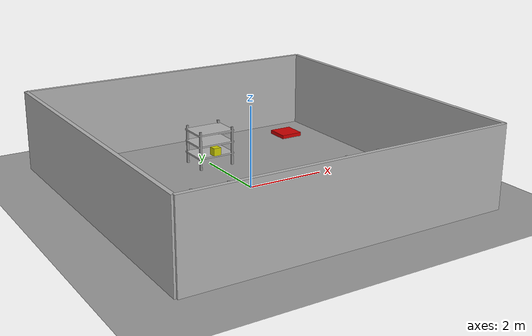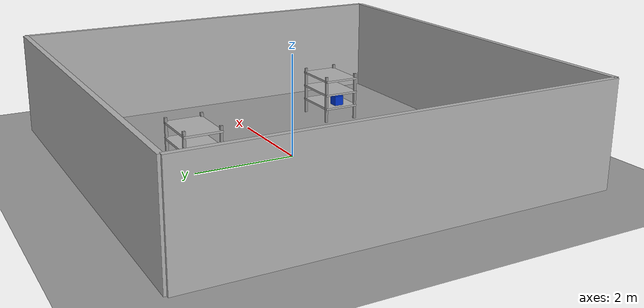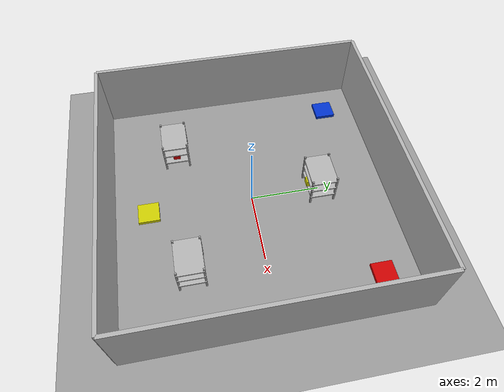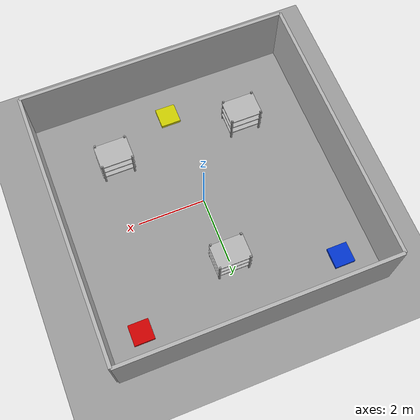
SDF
<?xml version="1.0"?>
<sdf version="1.6">
    <world name="warehouse">
        <plugin filename="gz-sim-physics-system" name="gz::sim::systems::Physics"/>
        <plugin filename="gz-sim-user-commands-system" name="gz::sim::systems::UserCommands"/>
        <plugin filename="gz-sim-scene-broadcaster-system" name="gz::sim::systems::SceneBroadcaster"/>
        <plugin filename="gz-sim-sensors-system" name="gz::sim::systems::Sensors"/>

        <light name="sun" type="directional">
            <pose>0 0 10 0 0 0</pose>
            <diffuse>1 1 1 1</diffuse>
            <specular>0.2 0.2 0.2 1</specular>
            <direction>-0.5 0.5 -1</direction>
        </light>

        <model name="ground_plane">
            <static>true</static>
            <link name="link">
                <collision name="collision">
                    <geometry>
                        <plane>
                            <normal>0 0 1</normal>
                            <size>20 20</size>
                        </plane>
                    </geometry>
                </collision>
                <visual name="visual">
                    <geometry>
                        <plane>
                            <normal>0 0 1</normal>
                            <size>20 20</size>
                        </plane>
                    </geometry>
                    <material>
                        <ambient>0.6 0.6 0.6 1</ambient>
                        <diffuse>0.6 0.6 0.6 1</diffuse>
                    </material>
                </visual>
            </link>
        </model>

        <model name="wall_north">
            <static>true</static>
            <pose>0 4 1 0 0 0</pose>
            <link name="link">
                <collision name="collision">
                    <geometry>
                        <box>
                            <size>8 0.1 2</size>
                        </box>
                    </geometry>
                </collision>
                <visual name="visual">
                    <geometry>
                        <box>
                            <size>8 0.1 2</size>
                        </box>
                    </geometry>
                    <material>
                        <ambient>0.7 0.7 0.7 1</ambient>
                        <diffuse>0.7 0.7 0.7 1</diffuse>
                    </material>
                </visual>
            </link>
        </model>

        <model name="wall_south">
            <static>true</static>
            <pose>0 -4 1 0 0 0</pose>
            <link name="link">
                <collision name="collision">
                    <geometry>
                        <box>
                            <size>8 0.1 2</size>
                        </box>
                    </geometry>
                </collision>
                <visual name="visual">
                    <geometry>
                        <box>
                            <size>8 0.1 2</size>
                        </box>
                    </geometry>
                    <material>
                        <ambient>0.7 0.7 0.7 1</ambient>
                        <diffuse>0.7 0.7 0.7 1</diffuse>
                    </material>
                </visual>
            </link>
        </model>

        <model name="wall_east">
            <static>true</static>
            <pose>4 0 1 0 0 1.5708</pose>
            <link name="link">
                <collision name="collision">
                    <geometry>
                        <box>
                            <size>8 0.1 2</size>
                        </box>
                    </geometry>
                </collision>
                <visual name="visual">
                    <geometry>
                        <box>
                            <size>8 0.1 2</size>
                        </box>
                    </geometry>
                    <material>
                        <ambient>0.7 0.7 0.7 1</ambient>
                        <diffuse>0.7 0.7 0.7 1</diffuse>
                    </material>
                </visual>
            </link>
        </model>

        <model name="wall_west">
            <static>true</static>
            <pose>-4 0 1 0 0 1.5708</pose>
            <link name="link">
                <collision name="collision">
                    <geometry>
                        <box>
                            <size>8 0.1 2</size>
                        </box>
                    </geometry>
                </collision>
                <visual name="visual">
                    <geometry>
                        <box>
                            <size>8 0.1 2</size>
                        </box>
                    </geometry>
                    <material>
                        <ambient>0.7 0.7 0.7 1</ambient>
                        <diffuse>0.7 0.7 0.7 1</diffuse>
                    </material>
                </visual>
            </link>
        </model>

        <!-- Shelves for pickup -->
        <include>
            <uri>model://shelf</uri>
            <name>shelf_red</name>
            <pose>-2 -2 0 0 0 0</pose>
        </include>
        <include>
            <uri>model://shelf</uri>
            <name>shelf_blue</name>
            <pose>2 -2 0 0 0 0</pose>
        </include>
        <include>
            <uri>model://shelf</uri>
            <name>shelf_yellow</name>
            <pose>0 2 0 0 0 0</pose>
        </include>

        <!-- Cargo boxes on tables -->
        <include>
            <uri>model://cargo_red</uri>
            <name>cargo_red_1</name>
            <pose>-1.7 -2 0.32 0 0 0</pose>
        </include>
        <include>
            <uri>model://cargo_blue</uri>
            <name>cargo_blue_1</name>
            <pose>1.7 -2 0.32 0 0 0</pose>
        </include>
        <include>
            <uri>model://cargo_yellow</uri>
            <name>cargo_yellow_1</name>
            <pose>0 1.7 0.32 0 0 0</pose>
        </include>

        <model name="sorting_station_red">
            <static>true</static>
            <pose>3 3 0.05 0 0 0</pose>
            <link name="link">
                <collision name="collision">
                    <geometry>
                        <box>
                            <size>0.6 0.6 0.1</size>
                        </box>
                    </geometry>
                </collision>
                <visual name="visual">
                    <geometry>
                        <box>
                            <size>0.6 0.6 0.1</size>
                        </box>
                    </geometry>
                    <material>
                        <ambient>0.8 0.0 0.0 1</ambient>
                        <diffuse>0.8 0.0 0.0 1</diffuse>
                    </material>
                </visual>
            </link>
        </model>

        <model name="sorting_station_blue">
            <static>true</static>
            <pose>-3 3 0.05 0 0 0</pose>
            <link name="link">
                <collision name="collision">
                    <geometry>
                        <box>
                            <size>0.6 0.6 0.1</size>
                        </box>
                    </geometry>
                </collision>
                <visual name="visual">
                    <geometry>
                        <box>
                            <size>0.6 0.6 0.1</size>
                        </box>
                    </geometry>
                    <material>
                        <ambient>0.0 0.2 0.8 1</ambient>
                        <diffuse>0.0 0.2 0.8 1</diffuse>
                    </material>
                </visual>
            </link>
        </model>

        <model name="sorting_station_yellow">
            <static>true</static>
            <pose>0 -3 0.05 0 0 0</pose>
            <link name="link">
                <collision name="collision">
                    <geometry>
                        <box>
                            <size>0.6 0.6 0.1</size>
                        </box>
                    </geometry>
                </collision>
                <visual name="visual">
                    <geometry>
                        <box>
                            <size>0.6 0.6 0.1</size>
                        </box>
                    </geometry>
                    <material>
                        <ambient>0.8 0.8 0.0 1</ambient>
                        <diffuse>0.8 0.8 0.0 1</diffuse>
                    </material>
                </visual>
            </link>
        </model>
    </world>
</sdf>

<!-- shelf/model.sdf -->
<sdf version="1.6">
    <model name="shelf">
        <static>true</static>
        <link name="shelf_link">
            <pose>0 0 0 0 0 0</pose>

            <!-- Legs (Wider spacing: y = +/- 0.35) -->
            <visual name="leg_fl">
                <pose>0.45 0.35 0.5 0 0 0</pose>
                <geometry>
                    <box>
                        <size>0.05 0.05 1.0</size>
                    </box>
                </geometry>
                <material>
                    <ambient>0.6 0.6 0.6 1</ambient>
                    <diffuse>0.6 0.6 0.6 1</diffuse>
                </material>
            </visual>
            <collision name="leg_fl_collision">
                <pose>0.45 0.35 0.5 0 0 0</pose>
                <geometry>
                    <box>
                        <size>0.05 0.05 1.0</size>
                    </box>
                </geometry>
            </collision>

            <visual name="leg_fr">
                <pose>0.45 -0.35 0.5 0 0 0</pose>
                <geometry>
                    <box>
                        <size>0.05 0.05 1.0</size>
                    </box>
                </geometry>
                <material>
                    <ambient>0.6 0.6 0.6 1</ambient>
                    <diffuse>0.6 0.6 0.6 1</diffuse>
                </material>
            </visual>
            <collision name="leg_fr_collision">
                <pose>0.45 -0.35 0.5 0 0 0</pose>
                <geometry>
                    <box>
                        <size>0.05 0.05 1.0</size>
                    </box>
                </geometry>
            </collision>

            <visual name="leg_rl">
                <pose>-0.45 0.35 0.5 0 0 0</pose>
                <geometry>
                    <box>
                        <size>0.05 0.05 1.0</size>
                    </box>
                </geometry>
                <material>
                    <ambient>0.6 0.6 0.6 1</ambient>
                    <diffuse>0.6 0.6 0.6 1</diffuse>
                </material>
            </visual>
            <collision name="leg_rl_collision">
                <pose>-0.45 0.35 0.5 0 0 0</pose>
                <geometry>
                    <box>
                        <size>0.05 0.05 1.0</size>
                    </box>
                </geometry>
            </collision>

            <visual name="leg_rr">
                <pose>-0.45 -0.35 0.5 0 0 0</pose>
                <geometry>
                    <box>
                        <size>0.05 0.05 1.0</size>
                    </box>
                </geometry>
                <material>
                    <ambient>0.6 0.6 0.6 1</ambient>
                    <diffuse>0.6 0.6 0.6 1</diffuse>
                </material>
            </visual>
            <collision name="leg_rr_collision">
                <pose>-0.45 -0.35 0.5 0 0 0</pose>
                <geometry>
                    <box>
                        <size>0.05 0.05 1.0</size>
                    </box>
                </geometry>
            </collision>

            <!-- Shelves (Wider width: y size = 0.74 to span the legs) -->
            <!-- Lowest shelf raised to z = 0.30 for robot base clearance -->
            <visual name="shelf_low">
                <pose>0 0 0.30 0 0 0</pose>
                <geometry>
                    <box>
                        <size>1.0 0.74 0.04</size>
                    </box>
                </geometry>
                <material>
                    <ambient>0.7 0.7 0.7 1</ambient>
                    <diffuse>0.7 0.7 0.7 1</diffuse>
                </material>
            </visual>
            <collision name="shelf_low_collision">
                <pose>0 0 0.30 0 0 0</pose>
                <geometry>
                    <box>
                        <size>1.0 0.74 0.04</size>
                    </box>
                </geometry>
            </collision>

            <visual name="shelf_mid">
                <pose>0 0 0.60 0 0 0</pose>
                <geometry>
                    <box>
                        <size>1.0 0.74 0.04</size>
                    </box>
                </geometry>
                <material>
                    <ambient>0.7 0.7 0.7 1</ambient>
                    <diffuse>0.7 0.7 0.7 1</diffuse>
                </material>
            </visual>
            <collision name="shelf_mid_collision">
                <pose>0 0 0.60 0 0 0</pose>
                <geometry>
                    <box>
                        <size>1.0 0.74 0.04</size>
                    </box>
                </geometry>
            </collision>

            <visual name="shelf_top">
                <pose>0 0 0.90 0 0 0</pose>
                <geometry>
                    <box>
                        <size>1.0 0.74 0.04</size>
                    </box>
                </geometry>
                <material>
                    <ambient>0.7 0.7 0.7 1</ambient>
                    <diffuse>0.7 0.7 0.7 1</diffuse>
                </material>
            </visual>
            <collision name="shelf_top_collision">
                <pose>0 0 0.90 0 0 0</pose>
                <geometry>
                    <box>
                        <size>1.0 0.74 0.04</size>
                    </box>
                </geometry>
            </collision>
        </link>
    </model>
</sdf>

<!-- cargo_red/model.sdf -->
<sdf version="1.6">
    <model name="cargo_red">
        <static>true</static>
        <link name="link">
            <pose>0 0 0.1 0 0 0</pose>

            <visual name="visual">
                <geometry>
                    <box>
                        <size>0.2 0.2 0.2</size>
                    </box>
                </geometry>
                <material>
                    <ambient>0.8 0.0 0.0 1</ambient>
                    <diffuse>0.8 0.0 0.0 1</diffuse>
                </material>
            </visual>
            <inertial>
                <mass>1.0</mass>
                <inertia>
                    <ixx>0.0067</ixx>
                    <iyy>0.0067</iyy>
                    <izz>0.0067</izz>
                    <ixy>0</ixy>
                    <ixz>0</ixz>
                    <iyz>0</iyz>
                </inertia>
            </inertial>
        </link>
    </model>
</sdf>

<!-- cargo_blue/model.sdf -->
<sdf version="1.6">
    <model name="cargo_blue">
        <static>true</static>
        <link name="link">
            <pose>0 0 0.1 0 0 0</pose>

            <visual name="visual">
                <geometry>
                    <box>
                        <size>0.2 0.2 0.2</size>
                    </box>
                </geometry>
                <material>
                    <ambient>0.0 0.2 0.8 1</ambient>
                    <diffuse>0.0 0.2 0.8 1</diffuse>
                </material>
            </visual>
            <inertial>
                <mass>1.0</mass>
                <inertia>
                    <ixx>0.0067</ixx>
                    <iyy>0.0067</iyy>
                    <izz>0.0067</izz>
                    <ixy>0</ixy>
                    <ixz>0</ixz>
                    <iyz>0</iyz>
                </inertia>
            </inertial>
        </link>
    </model>
</sdf>

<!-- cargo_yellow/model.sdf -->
<sdf version="1.6">
    <model name="cargo_yellow">
        <static>true</static>
        <link name="link">
            <pose>0 0 0.1 0 0 0</pose>

            <visual name="visual">
                <geometry>
                    <box>
                        <size>0.2 0.2 0.2</size>
                    </box>
                </geometry>
                <material>
                    <ambient>0.8 0.8 0.0 1</ambient>
                    <diffuse>0.8 0.8 0.0 1</diffuse>
                </material>
            </visual>
            <inertial>
                <mass>1.0</mass>
                <inertia>
                    <ixx>0.0067</ixx>
                    <iyy>0.0067</iyy>
                    <izz>0.0067</izz>
                    <ixy>0</ixy>
                    <ixz>0</ixz>
                    <iyz>0</iyz>
                </inertia>
            </inertial>
        </link>
    </model>
</sdf>
